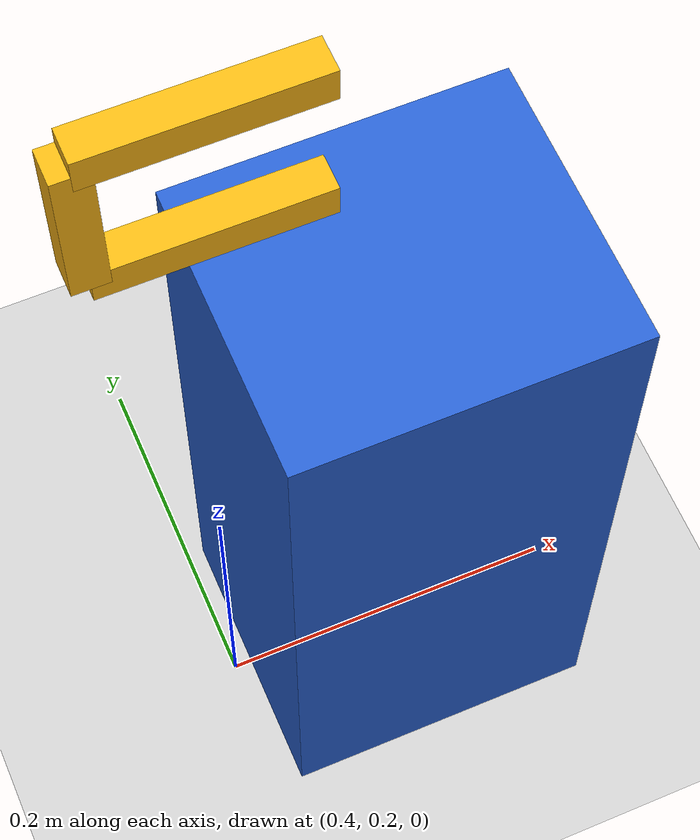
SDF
<?xml version="1.0"?>
<sdf version="1.6">
  <world name="manual_grasp">
    <plugin name="gazebo_ros_state" filename="libgazebo_ros_state.so">
      <ros><namespace>/gazebo</namespace></ros>
      <update_rate>50.0</update_rate>
    </plugin>
    <gui fullscreen="false">
      <camera name="manual_grasp_overview">
        <pose>-1.35 -1.85 1.15 0 0.42 0.75</pose>
        <view_controller>orbit</view_controller>
      </camera>
    </gui>
    <physics name="ode" type="ode">
      <max_step_size>0.005</max_step_size>
      <real_time_update_rate>200</real_time_update_rate>
      <ode><solver><type>quick</type><iters>100</iters><sor>1.0</sor></solver></ode>
    </physics>
    <gravity>0 0 -9.81</gravity>
    <include><uri>model://sun</uri></include>
    <include><uri>model://ground_plane</uri></include>

    <!-- A floor-standing handled load, pre-aligned with the neutral Piper
         gripper.  No camera, table, marker, or perception dependency exists. -->
    <model name="target_box">
      <static>false</static>
      <!-- Pre-aligned with the neutral-policy gripper after WBC startup. -->
      <pose>0.50 0.20 0.20 0 0 0</pose>
      <link name="body">
        <inertial>
          <mass>0.60</mass>
          <inertia><ixx>0.0113</ixx><iyy>0.0090</iyy><izz>0.0029</izz></inertia>
        </inertial>
        <collision name="body_collision">
          <surface>
            <friction><ode><mu>1.2</mu><mu2>1.2</mu2></ode></friction>
            <contact><ode><kp>300000</kp><kd>30</kd><max_vel>0.005</max_vel><min_depth>0.001</min_depth></ode></contact>
          </surface>
          <geometry><box><size>0.18 0.16 0.40</size></box></geometry>
        </collision>
        <visual name="body_visual">
          <geometry><box><size>0.18 0.16 0.40</size></box></geometry>
          <material><ambient>0.12 0.28 0.62 1</ambient><diffuse>0.16 0.38 0.82 1</diffuse></material>
        </visual>
      </link>
      <link name="handle">
        <pose>-0.145 0 0.325 0 0 0</pose>
        <inertial>
          <mass>0.03</mass>
          <inertia><ixx>0.00002</ixx><iyy>0.00002</iyy><izz>0.000003</izz></inertia>
        </inertial>
        <collision name="grip_collision">
          <surface>
            <friction><ode><mu>15.0</mu><mu2>15.0</mu2></ode></friction>
            <contact><ode><kp>300000</kp><kd>30</kd><max_vel>0.005</max_vel><min_depth>0.001</min_depth></ode></contact>
          </surface>
          <geometry><box><size>0.018 0.018 0.080</size></box></geometry>
        </collision>
        <collision name="upper_mount_collision">
          <pose>0.055 0 0.040 0 0 0</pose>
          <geometry><box><size>0.110 0.018 0.018</size></box></geometry>
        </collision>
        <collision name="lower_mount_collision">
          <pose>0.055 0 -0.040 0 0 0</pose>
          <geometry><box><size>0.110 0.018 0.018</size></box></geometry>
        </collision>
        <visual name="grip_visual">
          <geometry><box><size>0.018 0.018 0.080</size></box></geometry>
          <material><ambient>0.8 0.55 0.05 1</ambient><diffuse>1 0.72 0.08 1</diffuse></material>
        </visual>
        <visual name="upper_mount_visual">
          <pose>0.055 0 0.040 0 0 0</pose>
          <geometry><box><size>0.110 0.018 0.018</size></box></geometry>
          <material><ambient>0.8 0.55 0.05 1</ambient><diffuse>1 0.72 0.08 1</diffuse></material>
        </visual>
        <visual name="lower_mount_visual">
          <pose>0.055 0 -0.040 0 0 0</pose>
          <geometry><box><size>0.110 0.018 0.018</size></box></geometry>
          <material><ambient>0.8 0.55 0.05 1</ambient><diffuse>1 0.72 0.08 1</diffuse></material>
        </visual>
      </link>
      <joint name="body_to_handle" type="fixed">
        <parent>body</parent><child>handle</child>
      </joint>
    </model>
  </world>
</sdf>
